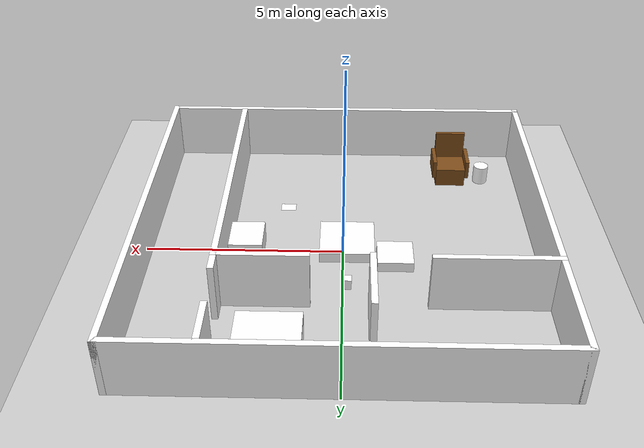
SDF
<?xml version="1.0" ?>
<sdf version="1.7">
  <world name="Warehouse_Cooperative_Assembly">
    <ambient>0.6 0.6 0.6 1</ambient>

    <light type="directional" name="sun">
      <cast_shadows>true</cast_shadows>
      <pose>0 0 10 0 0 0</pose>
      <diffuse>1 1 1 1</diffuse>
      <specular>0.1 0.1 0.1 1</specular>
      <direction>0.5 0.5 -1</direction>
    </light>

    <model name="ground_plane">
      <static>true</static>
      <link name="link">
        <collision name="collision">
          <geometry>
            <plane>
              <normal>0 0 1</normal>
              <size>100 100</size>
            </plane>
          </geometry>
          <surface>
            <friction>
              <ode>
                <mu>100</mu>
                <mu2>50</mu2>
              </ode>
            </friction>
          </surface>
        </collision>
        <visual name="visual">
          <geometry>
            <plane>
              <normal>0 0 1</normal>
              <size>100 100</size>
            </plane>
          </geometry>
          <material>
            <ambient>0.8 0.8 0.8 1</ambient>
            <diffuse>0.8 0.8 0.8 1</diffuse>
            <specular>0.8 0.8 0.8 1</specular>
          </material>
        </visual>
      </link>
    </model>
    <include>
      <uri>model://model</uri>
      <name>My_Warehouse_Walls</name>
      <pose>0 0 0 0 0 0</pose>
    </include>

    <model name='Maradona_Table'>
      <pose>2.5 0.0 0.0 0 0 0</pose>
      <static>true</static>
      <link name='table_link'>
        <collision name='table_collision'><geometry><box><size>0.75 0.75 1.5</size></box></geometry></collision>
        <visual name='table_visual'>
            <geometry><box><size>1 1 1.1</size></box></geometry>
             <material>
              <pbr>
              <metal>
              <albedo_map>../materials/textures/maradona.png</albedo_map>
        <roughness>1.0</roughness>
              <metalness>0.0</metalness>
            </metal>
          </pbr>
          <ambient>1 1 1 1</ambient>
          <diffuse>1 1 1 1</diffuse>
        </material>
        </visual>
      </link>
    </model>

    <model name='Target_Point'>
      <pose>1.5 -2 0.0 0 0 0</pose>
      <static>true</static>
      <link name='target_link'>
        <visual name='target_visual'>
            <geometry><box><size>0.4 0.3 0.001</size></box></geometry>
         <material>
              <pbr>
              <metal>
              <albedo_map>../materials/textures/napoli.png</albedo_map>
        <roughness>1.0</roughness>
              <metalness>0.0</metalness>
            </metal>
          </pbr>
          <ambient>1 1 1 1</ambient>
          <diffuse>1 1 1 1</diffuse>
        </material>
        </visual>
      </link>
    </model>

    <model name='Obstacle_A'>
      <pose> -1.3 0.3 0.0 0 0 0</pose>
      <static>true</static>
      <link name='obsA_link'>
        <collision name='obsA_collision'><geometry><box><size>0.9 0.9 0.5</size></box></geometry></collision>
        <visual name='obsA_visual'>
            <geometry><box><size>0.9 0.9 0.5</size></box></geometry>
         <material>
              <pbr>
              <metal>
              <albedo_map>../materials/textures/scaffale2.png</albedo_map>
        <roughness>1.0</roughness>
              <metalness>0.0</metalness>
            </metal>
          </pbr>
          <ambient>1 1 1 1</ambient>
          <diffuse>1 1 1 1</diffuse>
        </material>
        </visual>
      </link>
    </model>

    <model name='Obstacle_C'>
      <pose> -0.1 1.35 0.0 0 0 0</pose>
      <static>true</static>
      <link name='obsA_link'>
        <collision name='obsA_collision'><geometry><box><size>0.22 0.22 0.5</size></box></geometry></collision>
        <visual name='obsA_visual'>
            <geometry><box><size>0.22 0.22 0.5</size></box></geometry>
         <material>
              <pbr>
              <metal>
              <albedo_map>../materials/textures/cartello.png</albedo_map>
        <roughness>1.0</roughness>
              <metalness>0.0</metalness>
            </metal>
          </pbr>
          <ambient>1 1 1 1</ambient>
          <diffuse>1 1 1 1</diffuse>
        </material>
        </visual>
      </link>
    </model>

    <model name='Obstacle_B'>
      <pose>-0.1 -0.29 0 0 0 0</pose>
      <static>true</static>
      <link name='obsB_link'>
        <collision name='obsB_collision'><geometry><box><size>1.39 1.39 0.5</size></box></geometry></collision>
        <visual name='obsB_visual'>
            <geometry><box><size>1.39 1.39 0.5</size></box></geometry>
             <material>
              <pbr>
              <metal>
              <albedo_map>../materials/textures/stop3.png</albedo_map>
        <roughness>1.0</roughness>
              <metalness>0.0</metalness>
            </metal>
          </pbr>
          <ambient>1 1 1 1</ambient>
          <diffuse>1 1 1 1</diffuse>
        </material>
        </visual>
      </link>
    </model>

    <model name='Poltrona'>
    <pose>-3.0 -3.6 0.01 0 0 0</pose> <static>true</static> <link name='Poltrona_Seduta'>
      <pose>0 0 0.25 0 0 0</pose> <collision name='Poltrona_Seduta_Collision'>
        <geometry><box><size>0.8 0.8 0.5</size></box></geometry>
      </collision>
      <visual name='Poltrona_Seduta_Visual'>
        <geometry><box><size>0.8 0.8 0.5</size></box></geometry>
        <material><diffuse>0.5 0.3 0.1 1</diffuse></material>
      </visual>
    </link>

    <link name='Poltrona_Schienale'>
      <pose>0 -0.4 0.75 0 0 0</pose> <collision name='Poltrona_Schienale_Collision'>
        <geometry><box><size>0.8 0.1 1.0</size></box></geometry>
      </collision>
      <visual name='Poltrona_Schienale_Visual'>
        <geometry><box><size>0.8 0.1 1.0</size></box></geometry>
        <material><diffuse>0.5 0.3 0.1 1</diffuse></material>
      </visual>
    </link>

    <link name='Poltrona_Bracciolo_Dx'>
      <pose>0.45 0 0.5 0 0 0</pose> <collision name='Poltrona_Bracciolo_Dx_Collision'>
        <geometry><box><size>0.1 0.8 0.5</size></box></geometry>
      </collision>
      <visual name='Poltrona_Bracciolo_Dx_Visual'>
        <geometry><box><size>0.1 0.8 0.5</size></box></geometry>
        <material><diffuse>0.5 0.3 0.1 1</diffuse></material>
      </visual>
    </link>

    <link name='Poltrona_Bracciolo_Sx'>
      <pose>-0.45 0 0.5 0 0 0</pose> <collision name='Poltrona_Bracciolo_Sx_Collision'>
        <geometry><box><size>0.1 0.8 0.5</size></box></geometry>
      </collision>
      <visual name='Poltrona_Bracciolo_Sx_Visual'>
        <geometry><box><size>0.1 0.8 0.5</size></box></geometry>
        <material><diffuse>0.5 0.3 0.1 1</diffuse></material>
      </visual>
    </link>
    </model>

     <model name='cestino'>
      <pose>-3.88 -3.5 0 0 0 0</pose>
      <static>true</static>
      <link name='can_link'>
        <collision name='can_collision'>
          <geometry><cylinder><radius>0.2</radius><length>0.5</length></cylinder></geometry>
          <pose>0 0 0.25 0 0 0</pose>
        </collision>
        <visual name='can_visual'>
          <geometry><cylinder><radius>0.2</radius><length>0.5</length></cylinder></geometry>
          <pose>0 0 0.25 0 0 0</pose>
         <material>
              <pbr>
              <metal>
              <albedo_map>../materials/textures/cestino.png</albedo_map>
        <roughness>1.0</roughness>
              <metalness>0.0</metalness>
            </metal>
          </pbr>
          <ambient>1 1 1 1</ambient>
          <diffuse>1 1 1 1</diffuse>
        </material>
        </visual>
      </link>
    </model>

    <model name="Tavolo_Geometrico_Medio">
        <pose>1.6 3.66 0 0 0 0</pose>
        <static>1</static>

        <link name="ripiano_link">
            <pose>0 0 0.725 0 0 0</pose>
            <visual name="ripiano_visual">
                <geometry>
                    <box>
                        <size>1.5 1.0 0.05</size>
                    </box>
                </geometry>
         <material>
              <pbr>
              <metal>
              <albedo_map>../materials/textures/wood.png</albedo_map>
        <roughness>1.0</roughness>
              <metalness>0.0</metalness>
            </metal>
          </pbr>
          <ambient>1 1 1 1</ambient>
          <diffuse>1 1 1 1</diffuse>
        </material>
            </visual>
            <collision name="ripiano_collision">
                <geometry>
                    <box>
                        <size>1.5 1.0 0.05</size>
                    </box>
                </geometry>
            </collision>
        </link>

        <link name="gamba_AD">
            <pose>0.71 -0.46 0.35 0 0 0</pose>
            <visual name="visual">
                <geometry>
                    <box><size>0.08 0.08 0.7</size></box>
                </geometry>
        <material>
              <pbr>
              <metal>
              <albedo_map>../materials/textures/wood.png</albedo_map>
        <roughness>1.0</roughness>
              <metalness>0.0</metalness>
            </metal>
          </pbr>
          <ambient>1 1 1 1</ambient>
          <diffuse>1 1 1 1</diffuse>
        </material>
            </visual>
            <collision name="collision">
                <geometry><box><size>0.08 0.08 0.7</size></box></geometry>
            </collision>
        </link>

        <link name="gamba_AS">
            <pose>0.71 0.46 0.35 0 0 0</pose>
            <visual name="visual">
                <geometry><box><size>0.08 0.08 0.7</size></box></geometry>
    <material>
              <pbr>
              <metal>
              <albedo_map>../materials/textures/wood.png</albedo_map>
        <roughness>1.0</roughness>
              <metalness>0.0</metalness>
            </metal>
          </pbr>
          <ambient>1 1 1 1</ambient>
          <diffuse>1 1 1 1</diffuse>
        </material>
            </visual>
            <collision name="collision">
                <geometry><box><size>0.08 0.08 0.7</size></box></geometry>
            </collision>
        </link>

        <link name="gamba_PD">
            <pose>-0.71 -0.46 0.35 0 0 0</pose>
            <visual name="visual">
                <geometry><box><size>0.08 0.08 0.7</size></box></geometry>
    <material>
              <pbr>
              <metal>
              <albedo_map>../materials/textures/wood.png</albedo_map>
        <roughness>1.0</roughness>
              <metalness>0.0</metalness>
            </metal>
          </pbr>
          <ambient>1 1 1 1</ambient>
          <diffuse>1 1 1 1</diffuse>
        </material>
            </visual>
            <collision name="collision">
                <geometry><box><size>0.08 0.08 0.7</size></box></geometry>
            </collision>
        </link>

        <link name="gamba_PS">
            <pose>-0.71 0.46 0.35 0 0 0</pose>
            <visual name="visual">
                <geometry><box><size>0.08 0.08 0.7</size></box></geometry>
    <material>
              <pbr>
              <metal>
              <albedo_map>../materials/textures/wood.png</albedo_map>
        <roughness>1.0</roughness>
              <metalness>0.0</metalness>
            </metal>
          </pbr>
          <ambient>1 1 1 1</ambient>
          <diffuse>1 1 1 1</diffuse>
        </material>
            </visual>
            <collision name="collision">
                <geometry><box><size>0.08 0.08 0.7</size></box></geometry>
            </collision>
        </link>

       </model>

  </world>
</sdf>

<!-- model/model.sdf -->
<sdf version='1.7'>
  <model name='My_Warehouse_Walls'>
    <pose>0 0 0 0 0 0</pose>
    <link name='Wall_0'>
      <collision name='Wall_0_Collision'>
        <geometry>
          <box>
            <size>10 0.15 1.5</size>
          </box>
        </geometry>
        <pose>0 0 0.75 0 -0 0</pose>
      </collision>
      <visual name='Wall_0_Visual'>
        <pose>0 0 0.75 0 -0 0</pose>
        <geometry>
          <box>
            <size>10 0.15 1.5</size>
          </box>
        </geometry>
	<material>
	  <pbr>
	    <metal>
	      <albedo_map>model://materials/textures/wall.png</albedo_map>
	      <roughness>1.0</roughness>
	      <metalness>0.0</metalness>
	    </metal>
	  </pbr>
	  <ambient>1 1 1 1</ambient>
	  <diffuse>1 1 1 1</diffuse>
	</material>
        <meta>
          <layer>0</layer>
        </meta>
      </visual>
      <pose>0.001 4.925 0 0 -0 0</pose>
    </link>
    <link name='Wall_1'>
      <collision name='Wall_1_Collision'>
        <geometry>
          <box>
            <size>10 0.15 1.5</size>
          </box>
        </geometry>
        <pose>0 0 0.75 0 -0 0</pose>
      </collision>
      <visual name='Wall_1_Visual'>
        <pose>0 0 0.75 0 -0 0</pose>
        <geometry>
          <box>
            <size>10 0.15 1.5</size>
          </box>
        </geometry>
	<material>
	  <pbr>
	    <metal>
	      <albedo_map>model://materials/textures/wall.png</albedo_map>
	      <roughness>1.0</roughness>
	      <metalness>0.0</metalness>
	    </metal>
	  </pbr>
	  <ambient>1 1 1 1</ambient>
	  <diffuse>1 1 1 1</diffuse>
	</material>
        <meta>
          <layer>0</layer>
        </meta>
      </visual>
      <pose>4.926 -0 0 0 -0 -1.5708</pose>
    </link>
    <link name='Wall_11'>
      <collision name='Wall_11_Collision'>
        <geometry>
          <box>
            <size>3 0.15 1.5</size>
          </box>
        </geometry>
        <pose>0 0 0.75 0 -0 0</pose>
      </collision>
      <visual name='Wall_11_Visual'>
        <pose>0 0 0.75 0 -0 0</pose>
        <geometry>
          <box>
            <size>3 0.15 1.5</size>
          </box>
        </geometry>
	<material>
	  <pbr>
	    <metal>
	      <albedo_map>model://materials/textures/wall.png</albedo_map>
	      <roughness>1.0</roughness>
	      <metalness>0.0</metalness>
	    </metal>
	  </pbr>
	  <ambient>1 1 1 1</ambient>
	  <diffuse>1 1 1 1</diffuse>
	</material>
        <meta>
          <layer>0</layer>
        </meta>
      </visual>
      <pose>-3.501 2.069 0 0 -0 0</pose>
    </link>
    <link name='Wall_2'>
      <collision name='Wall_2_Collision'>
        <geometry>
          <box>
            <size>10 0.15 1.5</size>
          </box>
        </geometry>
        <pose>0 0 0.75 0 -0 0</pose>
      </collision>
      <visual name='Wall_2_Visual'>
        <pose>0 0 0.75 0 -0 0</pose>
        <geometry>
          <box>
            <size>10 0.15 1.5</size>
          </box>
        </geometry>
	<material>
	  <pbr>
	    <metal>
	      <albedo_map>model://materials/textures/wall.png</albedo_map>
	      <roughness>1.0</roughness>
	      <metalness>0.0</metalness>
	    </metal>
	  </pbr>
	  <ambient>1 1 1 1</ambient>
	  <diffuse>1 1 1 1</diffuse>
	</material>
        <meta>
          <layer>0</layer>
        </meta>
      </visual>
      <pose>0.001 -4.925 0 0 -0 3.14159</pose>
    </link>
    <link name='Wall_23'>
      <collision name='Wall_23_Collision'>
        <geometry>
          <box>
            <size>7.5 0.15 1.5</size>
          </box>
        </geometry>
        <pose>0 0 0.75 0 -0 0</pose>
      </collision>
      <visual name='Wall_23_Visual'>
        <pose>0 0 0.75 0 -0 0</pose>
        <geometry>
          <box>
            <size>7.5 0.15 1.5</size>
          </box>
        </geometry>
	<material>
	  <pbr>
	    <metal>
	      <albedo_map>model://materials/textures/wall.png</albedo_map>
	      <roughness>1.0</roughness>
	      <metalness>0.0</metalness>
	    </metal>
	  </pbr>
	  <ambient>1 1 1 1</ambient>
	  <diffuse>1 1 1 1</diffuse>
	</material>
        <meta>
          <layer>0</layer>
        </meta>
      </visual>
      <pose>2.919 -1.13 0 0 -0 -1.5708</pose>
    </link>
    <link name='Wall_25'>
      <collision name='Wall_25_Collision'>
        <geometry>
          <box>
            <size>1.25 0.15 1.5</size>
          </box>
        </geometry>
        <pose>0 0 0.75 0 -0 0</pose>
      </collision>
      <visual name='Wall_25_Visual'>
        <pose>0 0 0.75 0 -0 0</pose>
        <geometry>
          <box>
            <size>1.25 0.15 1.5</size>
          </box>
        </geometry>
	<material>
	  <pbr>
	    <metal>
	      <albedo_map>model://materials/textures/wall.png</albedo_map>
	      <roughness>1.0</roughness>
	      <metalness>0.0</metalness>
	    </metal>
	  </pbr>
	  <ambient>1 1 1 1</ambient>
	  <diffuse>1 1 1 1</diffuse>
	</material>
        <meta>
          <layer>0</layer>
        </meta>
      </visual>
      <pose>2.892 4.336 0 0 -0 -1.5708</pose>
    </link>
    <link name='Wall_29'>
      <collision name='Wall_29_Collision'>
        <geometry>
          <box>
            <size>2.25 0.15 1.5</size>
          </box>
        </geometry>
        <pose>0 0 0.75 0 -0 0</pose>
      </collision>
      <visual name='Wall_29_Visual'>
        <pose>0 0 0.75 0 -0 0</pose>
        <geometry>
          <box>
            <size>2.25 0.15 1.5</size>
          </box>
        </geometry>
	<material>
	  <pbr>
	    <metal>
	      <albedo_map>model://materials/textures/wall.png</albedo_map>
	      <roughness>1.0</roughness>
	      <metalness>0.0</metalness>
	    </metal>
	  </pbr>
	  <ambient>1 1 1 1</ambient>
	  <diffuse>1 1 1 1</diffuse>
	</material>
        <meta>
          <layer>0</layer>
        </meta>
      </visual>
      <pose>1.875 2.069 0 0 -0 0</pose>
    </link>
    <link name='Wall_3'>
      <collision name='Wall_3_Collision'>
        <geometry>
          <box>
            <size>10 0.15 1.5</size>
          </box>
        </geometry>
        <pose>0 0 0.75 0 -0 0</pose>
      </collision>
      <visual name='Wall_3_Visual'>
        <pose>0 0 0.75 0 -0 0</pose>
        <geometry>
          <box>
            <size>10 0.15 1.5</size>
          </box>
        </geometry>
	<material>
	  <pbr>
	    <metal>
	      <albedo_map>model://materials/textures/wall.png</albedo_map>
	      <roughness>1.0</roughness>
	      <metalness>0.0</metalness>
	    </metal>
	  </pbr>
	  <ambient>1 1 1 1</ambient>
	  <diffuse>1 1 1 1</diffuse>
	</material>
        <meta>
          <layer>0</layer>
        </meta>
      </visual>
      <pose>-4.924 -0 0 0 -0 1.5708</pose>
    </link>

    <link name='Wall_31'>
      <collision name='Wall_31_Collision'>
        <geometry>
          <box>
            <size>1.75 0.15 1.5</size>
          </box>
        </geometry>
        <pose>0 0 0.75 0 -0 0</pose>
      </collision>
      <visual name='Wall_31_Visual'>
        <pose>0 0 0.75 0 -0 0</pose>
        <geometry>
          <box>
            <size>1.75 0.15 1.5</size>
          </box>
        </geometry>
	<material>
	  <pbr>
	    <metal>
	      <albedo_map>model://materials/textures/wall.png</albedo_map>
	      <roughness>1.0</roughness>
	      <metalness>0.0</metalness>
	    </metal>
	  </pbr>
	  <ambient>1 1 1 1</ambient>
	  <diffuse>1 1 1 1</diffuse>
	</material>
        <meta>
          <layer>0</layer>
        </meta>
      </visual>
      <pose>-0.678 2.836 0 0 -0 -1.5708</pose>
    </link>
    <static>1</static>
  </model>
</sdf>
